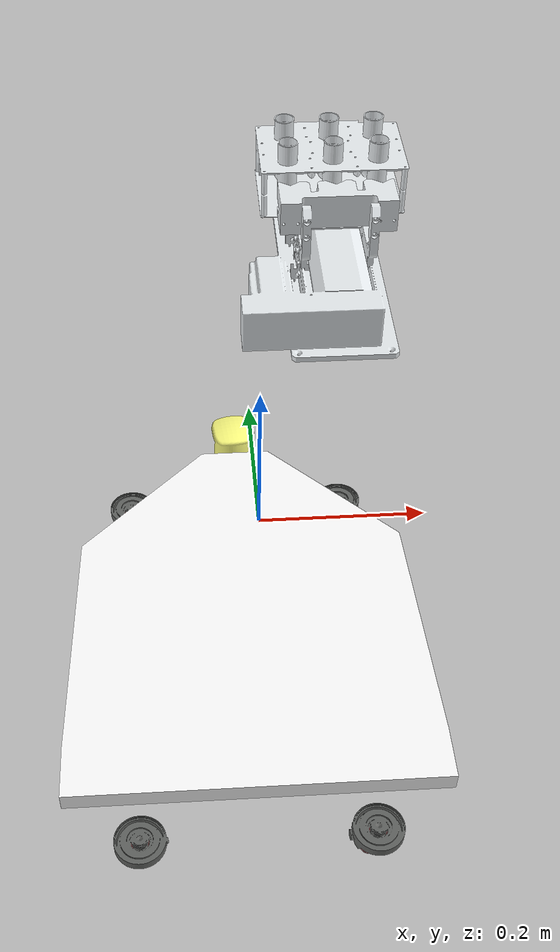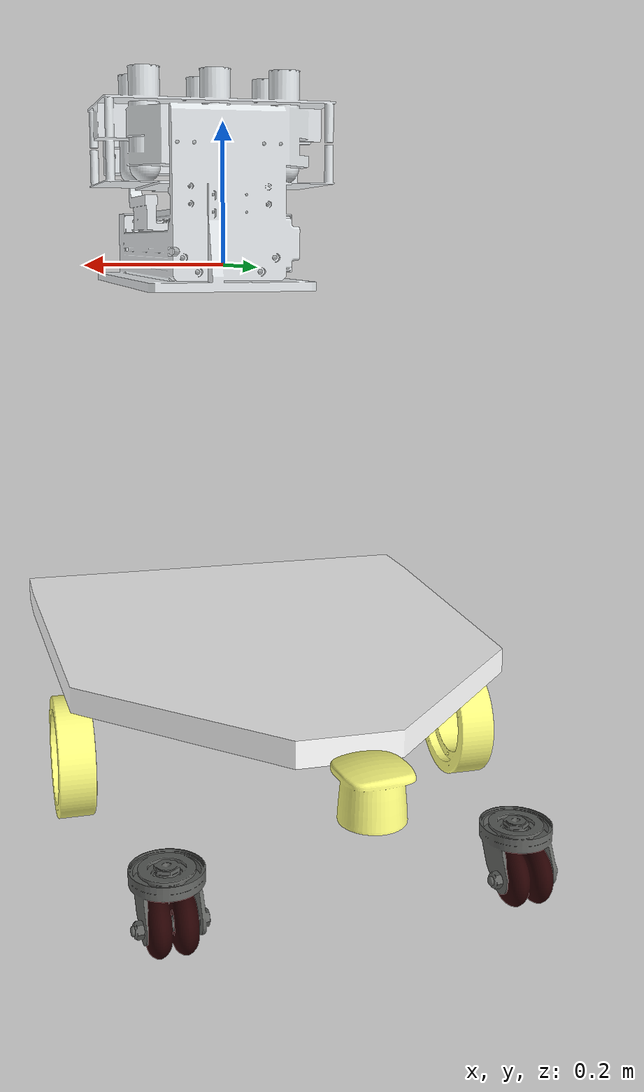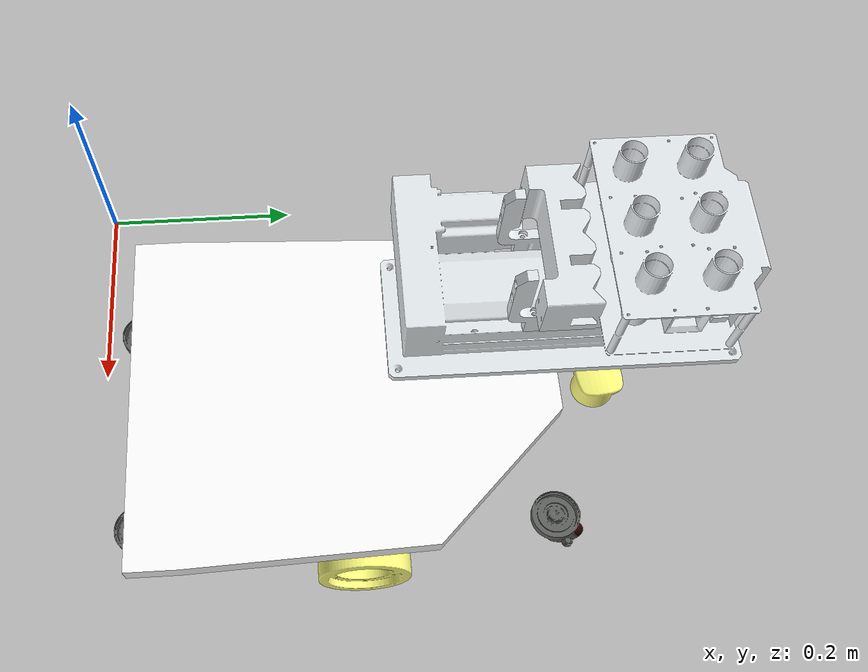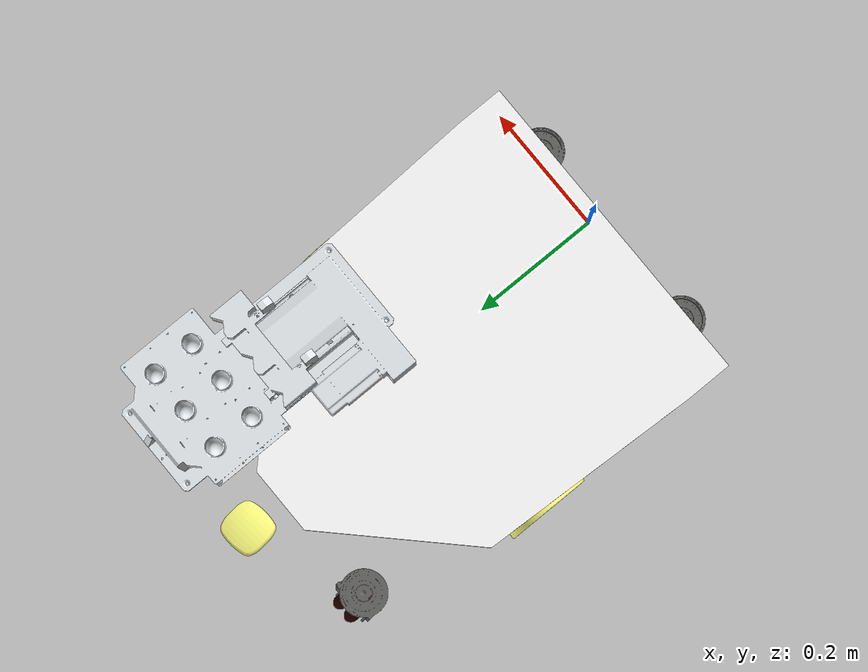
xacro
<?xml version="1.0" encoding="utf-8"?>

<robot xmlns:xacro="http://www.ros.org/wiki/xacro" name="sia_agv">
  <xacro:property name="universial_wheel_radius" value="0.033" />
  <xacro:property name="PI" value="3.1415926" />
  <xacro:property name="drive_wheel_radius" value="0.075" />
  <xacro:property name="drive_wheel_thickness" value="0.045" />
  <!-- 支架_front -->
  <xacro:macro name="bracket_func_front" params="bracket_name_front flag">
    <link name="${bracket_name_front}">
      <inertial>
        <origin xyz="-0.000336543565982339 0.0067145336674802 -0.0138488838342261" rpy="0 0 0" />
        <mass value="0.0728108307863773" />
        <inertia ixx="2.279226907759E-05" ixy="-1.52431962880911E-07" ixz="-1.17033639983441E-07" iyy="2.43402166733781E-05" iyz="1.19958125852891E-06" izz="3.97943793169979E-05" />
      </inertial>
      <visual>
        <origin xyz="0 0 0" rpy="0 0 0" />
        <geometry>
          <mesh filename="package://sia_agv_description/meshes/agv_universal_wheel_hinge.dae" />
        </geometry>
      </visual>
    </link>

    <joint name="${bracket_name_front}_joint" type="continuous">
      <origin xyz="${flag*0.194} 0.59537 -0.604" rpy="0 0 0" />
      <parent link="base_link" />
      <child link="${bracket_name_front}" />
      <axis xyz="0 0 -1" />
      <limit lower="-${PI}" upper="${PI}" effort="0" velocity="0" />
    </joint>
  </xacro:macro>
  <!-- 支架_rear -->
  <xacro:macro name="bracket_func_rear" params="bracket_name flag">
    <link name="${bracket_name}">
      <inertial>
        <origin xyz="0.000273986900293122 0.00609743706279098 -0.0161440693104884" rpy="0 0 0" />
        <mass value="0.0728108291695974" />
        <inertia ixx="2.27797981840266E-05" ixy="-6.14434156285646E-08" ixz="-4.70056384567012E-08" iyy="2.43526875822419E-05" iyz="1.20436001342095E-06" izz="3.97943792246835E-05" />
      </inertial>
      <visual>
        <origin xyz="0 0 0" rpy="0 0 0" />
        <geometry>
          <mesh filename="package://sia_agv_description/meshes/agv_universal_wheel_hinge.dae" />
        </geometry>
      </visual>
    </link>
    <joint name="${bracket_name}_joint" type="continuous">
      <origin xyz="${flag*0.18} -0.0885 -0.604" rpy="0 0 0" />
      <parent link="base_link" />
      <child link="${bracket_name}" />
      <axis xyz="0 0 -1" />
      <limit lower="-${PI}" upper="${PI}" effort="0" velocity="0" />
    </joint>
  </xacro:macro>

  <!-- 大轮 -->
  <xacro:macro name="drive_wheel_func" params="wheel_name flag">
    <link name="${wheel_name}">
      <inertial>
        <origin xyz="-6.93889390390723E-18 0 0.00168998379535312" rpy="0 0 0" />
        <mass value="0.418358558488212" />
        <inertia ixx="0.000915617766712358" ixy="3.32582077666032E-20" ixz="1.88985288748301E-20" iyy="0.000915617766712358" iyz="-8.76135733408917E-21" izz="0.00170660288564837" />
      </inertial>
      <visual>
        <origin xyz="0 0 0" rpy="0 0 0" />
        <geometry>
          <mesh filename="package://sia_agv_description/meshes/agv_drive_wheel.dae" />
        </geometry>
        <material name="">
          <color rgba="1 1 0.501960784313725 1" />
        </material>
      </visual>
      <collision>
        <origin xyz="0 0 0" rpy="0 0 0" />
        <geometry>
          <cylinder radius="${drive_wheel_radius}" length="${drive_wheel_thickness}" />
        </geometry>
      </collision>
    </link>
    <joint name="${wheel_name}_joint" type="continuous">
      <origin xyz="${flag*0.2595} 0.2765 -0.604" rpy="1.5708 0 -1.5708" />
      <parent link="base_link" />
      <child link="${wheel_name}" />
      <axis xyz="0 0 1" />
      <limit lower="-${PI}" upper="${PI}" effort="0" velocity="0" />
    </joint>
  </xacro:macro>
  <!-- 万向轮 -->
  <xacro:macro name="universial_wheel_func" params="wheel_name flag">
    <link name="${wheel_name}_wheel">
      <inertial>
        <origin xyz="8.63289463803874E-08 -6.61745890639942E-07 2.14074135862496E-07" rpy="0 0 0" />
        <mass value="0.126066298764299" />
        <inertia ixx="3.69211742911089E-05" ixy="3.29619978086518E-12" ixz="1.35062822981863E-10" iyy="3.6921114726363E-05" iyz="-1.54062454753047E-09" izz="6.47847019668671E-05" />
      </inertial>
      <visual>
        <origin xyz="0 0 0" rpy="0 0 0" />
        <geometry>
          <mesh filename="package://sia_agv_description/meshes/agv_universal_wheel.dae" />
        </geometry>
      </visual>
      <collision>
        <origin xyz="0 0 0" rpy="0 0 0" />

        <geometry>
          <sphere radius="${universial_wheel_radius}"/>
        </geometry>

      </collision>
    </link>
    <joint name="${wheel_name}_wheel_joint" type="continuous">
      <origin xyz="0.0 0.0199 -0.0425" rpy="1.57 0.0 -1.57" />
      <parent link="${wheel_name}" />
      <child link="${wheel_name}_wheel" />
      <axis xyz="0 0 -1" />
      <limit lower="-${PI}" upper="${PI}" effort="0" velocity="0" />
    </joint>
  </xacro:macro>
  <!-- 雷达 -->
  <xacro:macro name="laser_func" params="laser_name flag">
    <link name="${laser_name}_link">
      <inertial>
        <origin xyz="6.33688978618485E-06 -5.59744645495797E-05 0.0278383378698622" rpy="0 0 0" />
        <mass value="0.216211395934109" />
        <inertia ixx="0.000130773887841249" ixy="2.26503861750725E-08" ixz="-3.28530461658848E-08" iyy="0.000130567645197807" iyz="2.90267159366494E-07" izz="0.000128913789383877" />
      </inertial>
      <visual>
        <origin xyz="0 0 0" rpy="0 0 0" />
        <geometry>
          <mesh filename="package://sia_agv_description/meshes/agv_laser_link.dae" />
        </geometry>
        <material name="">
          <color rgba="1 1 0.501960784313725 1" />
        </material>
      </visual>
    </link>
    <joint name="${laser_name}_joint" type="fixed">
      <origin xyz="0 0.67006 -0.529" rpy="0 0 1.5707" />
      <parent link="base_link" />
      <child link="${laser_name}_link" />
      <axis xyz="0 0 -1" />
      <limit lower="-${PI}" upper="${PI}" effort="0" velocity="0" />
    </joint>
  </xacro:macro>

  <link name="base_link">
    <inertial>
      <origin xyz="-0.000543863853506091 0.282716810863512 -0.36138635137112" rpy="0 0 0" />
      <mass value="29.2907917401275" />
      <inertia ixx="0.658416147229005" ixy="0.000444325594903029" ixz="-5.22965035739952E-05" iyy="0.481294666894637" iyz="0.000150147215019541" izz="0.989603236439599" />
    </inertial>
    <visual>
      <origin xyz="0 0 0" rpy="0 0 0" />
      <geometry>
        <mesh filename="package://sia_agv_description/meshes/agv_base_link.dae" />
      </geometry>
      <material name="">
        <color rgba="1 1 1 1" />
      </material>
      <kinematic>1</kinematic>
    </visual>
    <collision>
      <origin xyz="0 0.2765 -0.5865" rpy="0 0 0" />
      <geometry>
        <box size="0.585 0.925 0.0525" />
      </geometry>
    </collision>
  </link>
  <xacro:bracket_func_front bracket_name_front="right_front" flag="1" />
  <xacro:bracket_func_front bracket_name_front="left_front" flag="-1" />
  <xacro:bracket_func_rear bracket_name="right_rear" flag="1" />
  <xacro:bracket_func_rear bracket_name="left_rear" flag="-1" />
  <xacro:drive_wheel_func wheel_name="right_wheel" flag="1" />
  <xacro:drive_wheel_func wheel_name="left_wheel" flag="-1" />
  <xacro:universial_wheel_func wheel_name="left_front" flag="-1" />
  <xacro:universial_wheel_func wheel_name="right_front" flag="-1" />
  <xacro:universial_wheel_func wheel_name="right_rear" flag="-1" />
  <xacro:universial_wheel_func wheel_name="left_rear" flag="-1" />
  <xacro:laser_func laser_name="laser" flag="-1" />

  <link name="base_link_tube">
    <inertial>
      <origin xyz="-0.014363760504454 0.0203917976213786 0.396202927097847" rpy="0 0 0" />
      <mass value="4.68149593934385" />
      <inertia
        ixx="0.0242261061981686"
        ixy="1.06389301348616E-05"
        ixz="-0.000246359559055914"
        iyy="0.0296477108535802"
        iyz="-7.04189022538268E-05"
        izz="0.00888940868288621" />
    </inertial>
    <visual>
      <origin  xyz="0 0 0" rpy="0 0 0" />
      <geometry>
        <mesh filename="package://sia_agv_description/meshes/yidong/base_link.STL" />
      </geometry>
      <material
        name="gray">
        <color  rgba="0.898039215686275 0.917647058823529 0.929411764705882 1" />
      </material>
    </visual>
    <collision>
      <origin xyz="0 0 0"  rpy="0 0 0" />
      <geometry>
        <mesh filename="package://sia_agv_description/meshes/yidong/base_link.STL" />
      </geometry>
    </collision>
  </link>

  <link name="tube_link">
    <inertial>
      <origin xyz="4.9452E-05 -0.051238 0.034119"  rpy="0 0 0" />
      <mass value="1.0714" />
      <inertia
        ixx="0.00065944"
        ixy="5.7893E-11"
        ixz="-6.1464E-08"
        iyy="0.0025328"
        iyz="-5.4851E-05"
        izz="0.0026271" />
    </inertial>
    <visual>
      <origin xyz="0 0 0"  rpy="0 0 0" />
      <geometry>
        <mesh filename="package://sia_agv_description/meshes/yidong/Empty_Link.STL" />
      </geometry>
      <material
        name="gray">
        <color  rgba="0.89804 0.91765 0.92941 1" />
      </material>
    </visual>
    <collision>
      <origin xyz="0 0 0"  rpy="0 0 0" />
      <geometry>
        <mesh filename="package://sia_agv_description/meshes/yidong/Empty_Link.STL" />
      </geometry>
    </collision>
  </link>

  <joint  name="base2base_link_tube_joint"  type="fixed">
    <origin xyz="0.12 0.15 0.03"  rpy="0 0 3.1415" />
    <parent  link="base_link" />
    <child  link="base_link_tube" />
    <axis  xyz="0 0 -1" />
    <limit lower="-${PI}" upper="${PI}" effort="0" velocity="0" />
  </joint>

   <joint name="move_platform_joint"  type="prismatic">
    <origin  xyz="-0.021579 -0.27516 0.047539"  rpy="0 0 0" />
    <parent  link="base_link_tube" />
    <child  link="tube_link" />
    <axis xyz="0 1 0" />
    <limit lower="-0.03" upper="0.06" effort="0" velocity="0" />
  </joint>

</robot>
